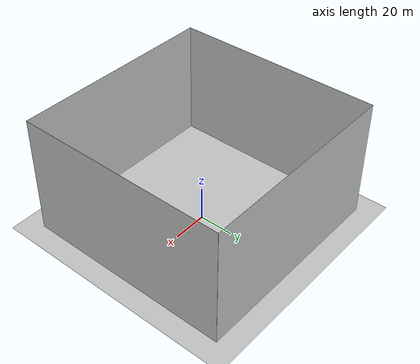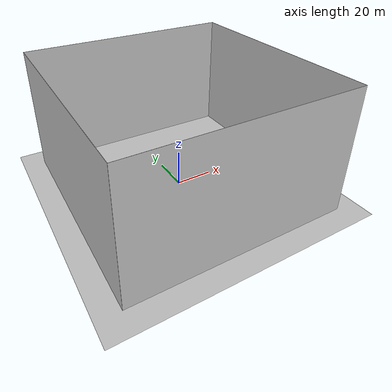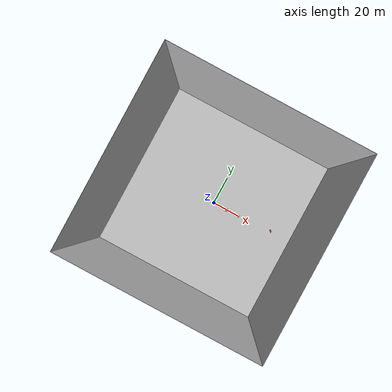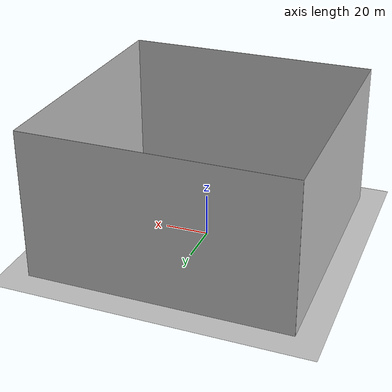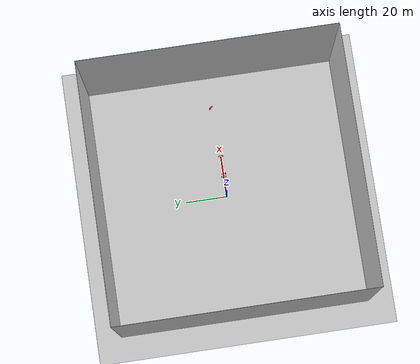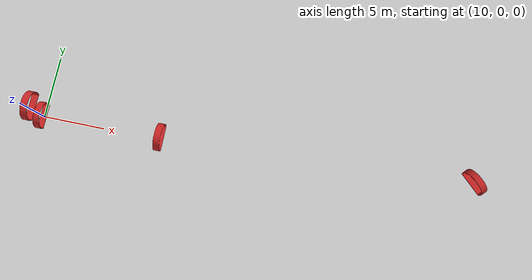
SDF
<sdf version="1.6">
 <world name="real_track">
  <plugin name="ros_interface_plugin" filename="librotors_gazebo_ros_interface_plugin.so"/>
  <include><uri>model://sun</uri></include>
  <model name="ground_plane">
   <static>true</static>
   <link name="link">
    <collision name="collision">
     <geometry><plane><normal>0 0 1</normal><size>120 120</size></plane></geometry>
     <surface><friction><ode><mu>100</mu><mu2>50</mu2></ode></friction></surface>
    </collision>
    <visual name="visual">
     <cast_shadows>false</cast_shadows>
     <geometry><plane><normal>0 0 1</normal><size>120 120</size></plane></geometry>
     <material>
      <script>
       <uri>model://race_track/iros_materials/materials/scripts/carpet.material</uri>
       <uri>model://race_track/iros_materials/materials/textures</uri>
       <name>iros/carpet</name>
      </script>
     </material>
    </visual>
   </link>
  </model>
  <model name="wall_1">
   <pose>-60.0 0.0 34.0 0 0 0</pose>
   <static>true</static>
   <link name="link">
    <inertial><mass>1.0</mass></inertial>
    <collision name="collision"><geometry><box><size>0.1 120.0 70.0</size></box></geometry></collision>
    <visual name="visual">
     <geometry><box><size>0.1 120.0 70.0</size></box></geometry>
     <material>
      <script>
       <uri>model://race_track/iros_materials/materials/scripts/wall_1.material</uri>
       <uri>model://race_track/iros_materials/materials/textures</uri>
       <name>iros/wall_1</name>
      </script>
     </material>
    </visual>
   </link>
  </model>
  <model name="wall_2">
   <pose>0.0 -60.0 34.0 0 0 0</pose>
   <static>true</static>
   <link name="link">
    <inertial><mass>1.0</mass></inertial>
    <collision name="collision"><geometry><box><size>120 0.1 70.0</size></box></geometry></collision>
    <visual name="visual">
     <geometry><box><size>120 0.1 70.0</size></box></geometry>
     <material>
      <script>
       <uri>model://race_track/iros_materials/materials/scripts/wall_2.material</uri>
       <uri>model://race_track/iros_materials/materials/textures</uri>
       <name>iros/wall_2</name>
      </script>
     </material>
    </visual>
   </link>
  </model>
  <model name="wall_3">
   <pose>60.0 0.0 34.0 0 0 0</pose>
   <static>true</static>
   <link name="link">
    <inertial><mass>1.0</mass></inertial>
    <collision name="collision"><geometry><box><size>0.1 120.0 70.0</size></box></geometry></collision>
    <visual name="visual">
     <geometry><box><size>0.1 120.0 70.0</size></box></geometry>
     <material>
      <script>
       <uri>model://race_track/iros_materials/materials/scripts/wall_3.material</uri>
       <uri>model://race_track/iros_materials/materials/textures</uri>
       <name>iros/wall_3</name>
      </script>
     </material>
    </visual>
   </link>
  </model>
  <model name="wall_4">
   <pose>0.0 60.0 34.0 0 0 0</pose>
   <static>true</static>
   <link name="link">
    <inertial><mass>1.0</mass></inertial>
    <collision name="collision"><geometry><box><size>120 0.1 70.0</size></box></geometry></collision>
    <visual name="visual">
     <geometry><box><size>120 0.1 70.0</size></box></geometry>
     <material>
      <script>
       <uri>model://race_track/iros_materials/materials/scripts/wall_4.material</uri>
       <uri>model://race_track/iros_materials/materials/textures</uri>
       <name>iros/wall_4</name>
      </script>
     </material>
    </visual>
   </link>
  </model>
  <model name="gate_1">
   <pose>10 0 0.3 0 0 0</pose>
   <static>true</static>
   <link name="gate_1_body">
    <collision name="gate_1_collision">
     <geometry><mesh><uri>model://race_track/real_world/gate/meshes/gate.dae</uri></mesh></geometry>
    </collision>
    <visual name="gate_1_visual">
     <geometry><mesh><uri>model://race_track/real_world/gate/meshes/gate.dae</uri></mesh></geometry>
     <material><script><name>Gazebo/Red</name></script></material>
    </visual>
   </link>
  </model>
  <model name="gate_2">
   <pose>10.7 0 4.4 0 0 0</pose>
   <static>true</static>
   <link name="gate_2_body">
    <collision name="gate_2_collision">
     <geometry><mesh><uri>model://race_track/real_world/gate/meshes/gate.dae</uri></mesh></geometry>
    </collision>
    <visual name="gate_2_visual">
     <geometry><mesh><uri>model://race_track/real_world/gate/meshes/gate.dae</uri></mesh></geometry>
     <material><script><name>Gazebo/Red</name></script></material>
    </visual>
   </link>
  </model>
  <model name="gate_3">
   <pose>20 0 1.4 0 0 0</pose>
   <static>true</static>
   <link name="gate_3_body">
    <collision name="gate_3_collision">
     <geometry><mesh><uri>model://race_track/real_world/gate/meshes/gate.dae</uri></mesh></geometry>
    </collision>
    <visual name="gate_3_visual">
     <geometry><mesh><uri>model://race_track/real_world/gate/meshes/gate.dae</uri></mesh></geometry>
     <material><script><name>Gazebo/Red</name></script></material>
    </visual>
   </link>
  </model>
  <model name="gate_4">
   <pose>44.7 1.4 1.4 0 0 0.8</pose>
   <static>true</static>
   <link name="gate_4_body">
    <collision name="gate_4_collision">
     <geometry><mesh><uri>model://race_track/real_world/gate/meshes/gate.dae</uri></mesh></geometry>
    </collision>
    <visual name="gate_4_visual">
     <geometry><mesh><uri>model://race_track/real_world/gate/meshes/gate.dae</uri></mesh></geometry>
     <material><script><name>Gazebo/Red</name></script></material>
    </visual>
   </link>
  </model>
  <model name="gate_5">
   <pose>44.7 1.4 1.4 0 0 0.8</pose>
   <static>true</static>
   <link name="gate_5_body">
    <collision name="gate_5_collision">
     <geometry><mesh><uri>model://race_track/real_world/gate/meshes/gate.dae</uri></mesh></geometry>
    </collision>
    <visual name="gate_5_visual">
     <geometry><mesh><uri>model://race_track/real_world/gate/meshes/gate.dae</uri></mesh></geometry>
     <material><script><name>Gazebo/Red</name></script></material>
    </visual>
   </link>
  </model>
  <model name="gate_6">
   <pose>44.7 1.4 1.4 0 0 0.8</pose>
   <static>true</static>
   <link name="gate_6_body">
    <collision name="gate_6_collision">
     <geometry><mesh><uri>model://race_track/real_world/gate/meshes/gate.dae</uri></mesh></geometry>
    </collision>
    <visual name="gate_6_visual">
     <geometry><mesh><uri>model://race_track/real_world/gate/meshes/gate.dae</uri></mesh></geometry>
     <material><script><name>Gazebo/Red</name></script></material>
    </visual>
   </link>
  </model>
  <model name="gate_7">
   <pose>44.7 1.4 1.4 0 0 0.8</pose>
   <static>true</static>
   <link name="gate_7_body">
    <collision name="gate_7_collision">
     <geometry><mesh><uri>model://race_track/real_world/gate/meshes/gate.dae</uri></mesh></geometry>
    </collision>
    <visual name="gate_7_visual">
     <geometry><mesh><uri>model://race_track/real_world/gate/meshes/gate.dae</uri></mesh></geometry>
     <material><script><name>Gazebo/Red</name></script></material>
    </visual>
   </link>
  </model>
 </world>
</sdf>
